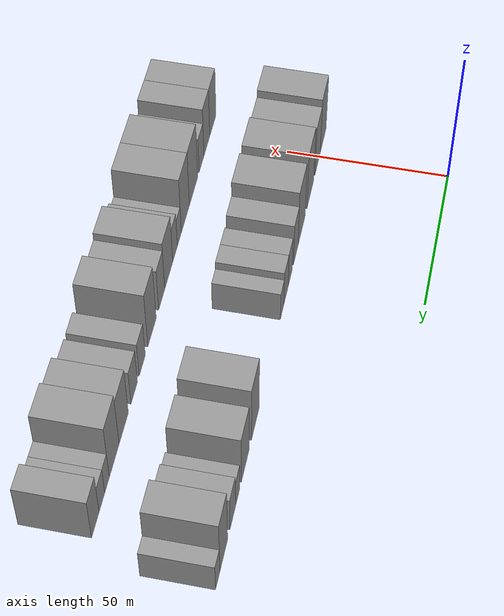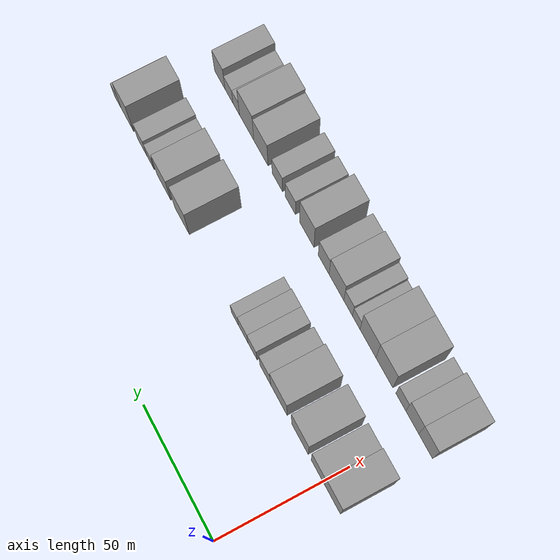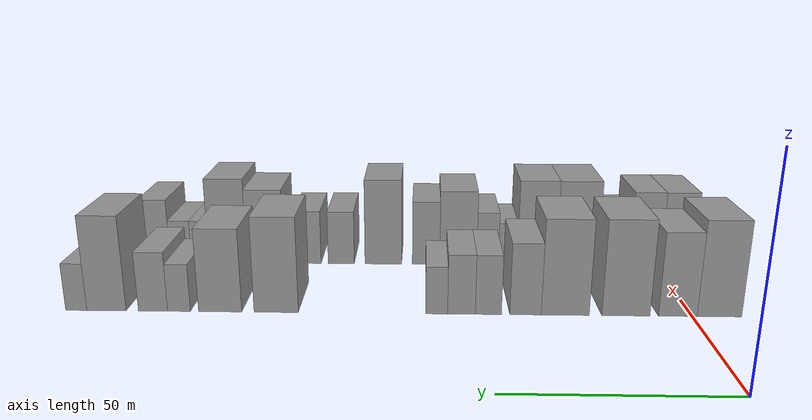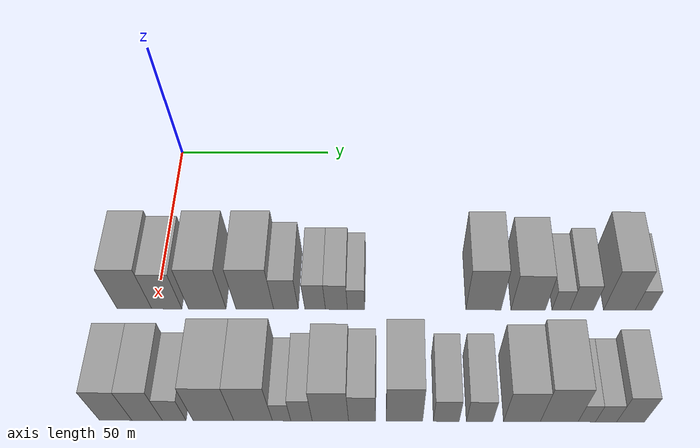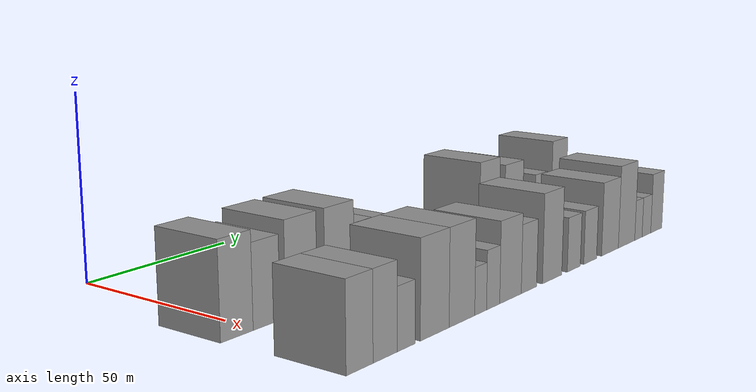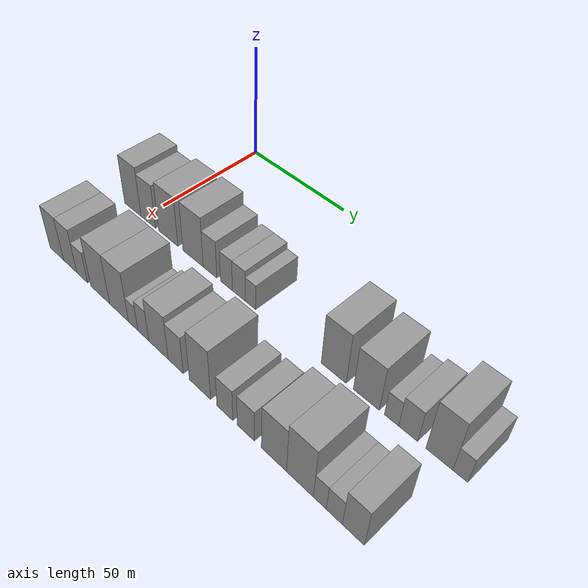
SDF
<sdf version="1.6">
 <world name="default">
  <model name="building_31">
   <static>1</static>
   <pose>50.0000 -6.4729 0 0.000000 0.000000 0.000000</pose>
   <link name="link">
    <pose>0 0 12.00 0 0 0</pose>
    <collision name="collision"><geometry><box><size>20.0000 10.5618 24.0000</size></box></geometry></collision>
    <visual name="visual">
     <cast_shadows>0</cast_shadows>
     <geometry><box><size>20.0000 10.5618 24.0000</size></box></geometry>
     <material>
      <script>
       <uri>model://grey_wall/materials/scripts</uri>
       <uri>model://grey_wall/materials/textures</uri>
       <name>vrc/grey_wall</name>
      </script>
     </material>
    </visual>
   </link>
  </model>
  <model name="building_32">
   <static>1</static>
   <pose>50.0000 3.3889 0 0.000000 0.000000 0.000000</pose>
   <link name="link">
    <pose>0 0 10.50 0 0 0</pose>
    <collision name="collision"><geometry><box><size>20.0000 9.1619 21.0000</size></box></geometry></collision>
    <visual name="visual">
     <cast_shadows>0</cast_shadows>
     <geometry><box><size>20.0000 9.1619 21.0000</size></box></geometry>
     <material>
      <script>
       <uri>model://grey_wall/materials/scripts</uri>
       <uri>model://grey_wall/materials/textures</uri>
       <name>vrc/grey_wall</name>
      </script>
     </material>
    </visual>
   </link>
  </model>
  <model name="building_33">
   <static>1</static>
   <pose>50.0000 15.7041 0 0.000000 0.000000 0.000000</pose>
   <link name="link">
    <pose>0 0 12.00 0 0 0</pose>
    <collision name="collision"><geometry><box><size>20.0000 11.4685 24.0000</size></box></geometry></collision>
    <visual name="visual">
     <cast_shadows>0</cast_shadows>
     <geometry><box><size>20.0000 11.4685 24.0000</size></box></geometry>
     <material>
      <script>
       <uri>model://grey_wall/materials/scripts</uri>
       <uri>model://grey_wall/materials/textures</uri>
       <name>vrc/grey_wall</name>
      </script>
     </material>
    </visual>
   </link>
  </model>
  <model name="building_34">
   <static>1</static>
   <pose>50.0000 30.1727 0 0.000000 0.000000 0.000000</pose>
   <link name="link">
    <pose>0 0 12.00 0 0 0</pose>
    <collision name="collision"><geometry><box><size>20.0000 11.4687 24.0000</size></box></geometry></collision>
    <visual name="visual">
     <cast_shadows>0</cast_shadows>
     <geometry><box><size>20.0000 11.4687 24.0000</size></box></geometry>
     <material>
      <script>
       <uri>model://grey_wall/materials/scripts</uri>
       <uri>model://grey_wall/materials/textures</uri>
       <name>vrc/grey_wall</name>
      </script>
     </material>
    </visual>
   </link>
  </model>
  <model name="building_35">
   <static>1</static>
   <pose>50.0000 39.6602 0 0.000000 0.000000 0.000000</pose>
   <link name="link">
    <pose>0 0 9.00 0 0 0</pose>
    <collision name="collision"><geometry><box><size>20.0000 7.5063 18.0000</size></box></geometry></collision>
    <visual name="visual">
     <cast_shadows>0</cast_shadows>
     <geometry><box><size>20.0000 7.5063 18.0000</size></box></geometry>
     <material>
      <script>
       <uri>model://grey_wall/materials/scripts</uri>
       <uri>model://grey_wall/materials/textures</uri>
       <name>vrc/grey_wall</name>
      </script>
     </material>
    </visual>
   </link>
  </model>
  <model name="building_36">
   <static>1</static>
   <pose>50.0000 48.5422 0 0.000000 0.000000 0.000000</pose>
   <link name="link">
    <pose>0 0 7.50 0 0 0</pose>
    <collision name="collision"><geometry><box><size>20.0000 6.2576 15.0000</size></box></geometry></collision>
    <visual name="visual">
     <cast_shadows>0</cast_shadows>
     <geometry><box><size>20.0000 6.2576 15.0000</size></box></geometry>
     <material>
      <script>
       <uri>model://grey_wall/materials/scripts</uri>
       <uri>model://grey_wall/materials/textures</uri>
       <name>vrc/grey_wall</name>
      </script>
     </material>
    </visual>
   </link>
  </model>
  <model name="building_37">
   <static>1</static>
   <pose>50.0000 55.0027 0 0.000000 0.000000 0.000000</pose>
   <link name="link">
    <pose>0 0 7.50 0 0 0</pose>
    <collision name="collision"><geometry><box><size>20.0000 6.6635 15.0000</size></box></geometry></collision>
    <visual name="visual">
     <cast_shadows>0</cast_shadows>
     <geometry><box><size>20.0000 6.6635 15.0000</size></box></geometry>
     <material>
      <script>
       <uri>model://grey_wall/materials/scripts</uri>
       <uri>model://grey_wall/materials/textures</uri>
       <name>vrc/grey_wall</name>
      </script>
     </material>
    </visual>
   </link>
  </model>
  <model name="building_38">
   <static>1</static>
   <pose>50.0000 60.9826 0 0.000000 0.000000 0.000000</pose>
   <link name="link">
    <pose>0 0 6.00 0 0 0</pose>
    <collision name="collision"><geometry><box><size>20.0000 5.2962 12.0000</size></box></geometry></collision>
    <visual name="visual">
     <cast_shadows>0</cast_shadows>
     <geometry><box><size>20.0000 5.2962 12.0000</size></box></geometry>
     <material>
      <script>
       <uri>model://grey_wall/materials/scripts</uri>
       <uri>model://grey_wall/materials/textures</uri>
       <name>vrc/grey_wall</name>
      </script>
     </material>
    </visual>
   </link>
  </model>
  <model name="building_39">
   <static>1</static>
   <pose>50.0000 99.6997 0 0.000000 0.000000 0.000000</pose>
   <link name="link">
    <pose>0 0 12.00 0 0 0</pose>
    <collision name="collision"><geometry><box><size>20.0000 10.7127 24.0000</size></box></geometry></collision>
    <visual name="visual">
     <cast_shadows>0</cast_shadows>
     <geometry><box><size>20.0000 10.7127 24.0000</size></box></geometry>
     <material>
      <script>
       <uri>model://grey_wall/materials/scripts</uri>
       <uri>model://grey_wall/materials/textures</uri>
       <name>vrc/grey_wall</name>
      </script>
     </material>
    </visual>
   </link>
  </model>
  <model name="building_40">
   <static>1</static>
   <pose>50.0000 113.2985 0 0.000000 0.000000 0.000000</pose>
   <link name="link">
    <pose>0 0 10.50 0 0 0</pose>
    <collision name="collision"><geometry><box><size>20.0000 10.4848 21.0000</size></box></geometry></collision>
    <visual name="visual">
     <cast_shadows>0</cast_shadows>
     <geometry><box><size>20.0000 10.4848 21.0000</size></box></geometry>
     <material>
      <script>
       <uri>model://grey_wall/materials/scripts</uri>
       <uri>model://grey_wall/materials/textures</uri>
       <name>vrc/grey_wall</name>
      </script>
     </material>
    </visual>
   </link>
  </model>
  <model name="building_41">
   <static>1</static>
   <pose>50.0000 123.3057 0 0.000000 0.000000 0.000000</pose>
   <link name="link">
    <pose>0 0 6.00 0 0 0</pose>
    <collision name="collision"><geometry><box><size>20.0000 5.5295 12.0000</size></box></geometry></collision>
    <visual name="visual">
     <cast_shadows>0</cast_shadows>
     <geometry><box><size>20.0000 5.5295 12.0000</size></box></geometry>
     <material>
      <script>
       <uri>model://grey_wall/materials/scripts</uri>
       <uri>model://grey_wall/materials/textures</uri>
       <name>vrc/grey_wall</name>
      </script>
     </material>
    </visual>
   </link>
  </model>
  <model name="building_42">
   <static>1</static>
   <pose>50.0000 129.6413 0 0.000000 0.000000 0.000000</pose>
   <link name="link">
    <pose>0 0 7.50 0 0 0</pose>
    <collision name="collision"><geometry><box><size>20.0000 7.1417 15.0000</size></box></geometry></collision>
    <visual name="visual">
     <cast_shadows>0</cast_shadows>
     <geometry><box><size>20.0000 7.1417 15.0000</size></box></geometry>
     <material>
      <script>
       <uri>model://grey_wall/materials/scripts</uri>
       <uri>model://grey_wall/materials/textures</uri>
       <name>vrc/grey_wall</name>
      </script>
     </material>
    </visual>
   </link>
  </model>
  <model name="building_43">
   <static>1</static>
   <pose>50.0000 141.0162 0 0.000000 0.000000 0.000000</pose>
   <link name="link">
    <pose>0 0 12.00 0 0 0</pose>
    <collision name="collision"><geometry><box><size>20.0000 9.6081 24.0000</size></box></geometry></collision>
    <visual name="visual">
     <cast_shadows>0</cast_shadows>
     <geometry><box><size>20.0000 9.6081 24.0000</size></box></geometry>
     <material>
      <script>
       <uri>model://grey_wall/materials/scripts</uri>
       <uri>model://grey_wall/materials/textures</uri>
       <name>vrc/grey_wall</name>
      </script>
     </material>
    </visual>
   </link>
  </model>
  <model name="building_44">
   <static>1</static>
   <pose>50.0000 148.4141 0 0.000000 0.000000 0.000000</pose>
   <link name="link">
    <pose>0 0 6.00 0 0 0</pose>
    <collision name="collision"><geometry><box><size>20.0000 5.1876 12.0000</size></box></geometry></collision>
    <visual name="visual">
     <cast_shadows>0</cast_shadows>
     <geometry><box><size>20.0000 5.1876 12.0000</size></box></geometry>
     <material>
      <script>
       <uri>model://grey_wall/materials/scripts</uri>
       <uri>model://grey_wall/materials/textures</uri>
       <name>vrc/grey_wall</name>
      </script>
     </material>
    </visual>
   </link>
  </model>
  <model name="building_92">
   <static>1</static>
   <pose>85.0000 -5.9028 0 0.000000 0.000000 0.000000</pose>
   <link name="link">
    <pose>0 0 10.50 0 0 0</pose>
    <collision name="collision"><geometry><box><size>20.0000 9.1140 21.0000</size></box></geometry></collision>
    <visual name="visual">
     <cast_shadows>0</cast_shadows>
     <geometry><box><size>20.0000 9.1140 21.0000</size></box></geometry>
     <material>
      <script>
       <uri>model://grey_wall/materials/scripts</uri>
       <uri>model://grey_wall/materials/textures</uri>
       <name>vrc/grey_wall</name>
      </script>
     </material>
    </visual>
   </link>
  </model>
  <model name="building_93">
   <static>1</static>
   <pose>85.0000 2.9292 0 0.000000 0.000000 0.000000</pose>
   <link name="link">
    <pose>0 0 10.50 0 0 0</pose>
    <collision name="collision"><geometry><box><size>20.0000 8.5500 21.0000</size></box></geometry></collision>
    <visual name="visual">
     <cast_shadows>0</cast_shadows>
     <geometry><box><size>20.0000 8.5500 21.0000</size></box></geometry>
     <material>
      <script>
       <uri>model://grey_wall/materials/scripts</uri>
       <uri>model://grey_wall/materials/textures</uri>
       <name>vrc/grey_wall</name>
      </script>
     </material>
    </visual>
   </link>
  </model>
  <model name="building_94">
   <static>1</static>
   <pose>85.0000 10.5627 0 0.000000 0.000000 0.000000</pose>
   <link name="link">
    <pose>0 0 7.50 0 0 0</pose>
    <collision name="collision"><geometry><box><size>20.0000 6.7169 15.0000</size></box></geometry></collision>
    <visual name="visual">
     <cast_shadows>0</cast_shadows>
     <geometry><box><size>20.0000 6.7169 15.0000</size></box></geometry>
     <material>
      <script>
       <uri>model://grey_wall/materials/scripts</uri>
       <uri>model://grey_wall/materials/textures</uri>
       <name>vrc/grey_wall</name>
      </script>
     </material>
    </visual>
   </link>
  </model>
  <model name="building_95">
   <static>1</static>
   <pose>85.0000 21.6450 0 0.000000 0.000000 0.000000</pose>
   <link name="link">
    <pose>0 0 12.00 0 0 0</pose>
    <collision name="collision"><geometry><box><size>20.0000 11.4477 24.0000</size></box></geometry></collision>
    <visual name="visual">
     <cast_shadows>0</cast_shadows>
     <geometry><box><size>20.0000 11.4477 24.0000</size></box></geometry>
     <material>
      <script>
       <uri>model://grey_wall/materials/scripts</uri>
       <uri>model://grey_wall/materials/textures</uri>
       <name>vrc/grey_wall</name>
      </script>
     </material>
    </visual>
   </link>
  </model>
  <model name="building_96">
   <static>1</static>
   <pose>85.0000 32.7857 0 0.000000 0.000000 0.000000</pose>
   <link name="link">
    <pose>0 0 12.00 0 0 0</pose>
    <collision name="collision"><geometry><box><size>20.0000 10.8338 24.0000</size></box></geometry></collision>
    <visual name="visual">
     <cast_shadows>0</cast_shadows>
     <geometry><box><size>20.0000 10.8338 24.0000</size></box></geometry>
     <material>
      <script>
       <uri>model://grey_wall/materials/scripts</uri>
       <uri>model://grey_wall/materials/textures</uri>
       <name>vrc/grey_wall</name>
      </script>
     </material>
    </visual>
   </link>
  </model>
  <model name="building_97">
   <static>1</static>
   <pose>85.0000 40.8037 0 0.000000 0.000000 0.000000</pose>
   <link name="link">
    <pose>0 0 6.00 0 0 0</pose>
    <collision name="collision"><geometry><box><size>20.0000 5.2021 12.0000</size></box></geometry></collision>
    <visual name="visual">
     <cast_shadows>0</cast_shadows>
     <geometry><box><size>20.0000 5.2021 12.0000</size></box></geometry>
     <material>
      <script>
       <uri>model://grey_wall/materials/scripts</uri>
       <uri>model://grey_wall/materials/textures</uri>
       <name>vrc/grey_wall</name>
      </script>
     </material>
    </visual>
   </link>
  </model>
  <model name="building_98">
   <static>1</static>
   <pose>85.0000 46.4059 0 0.000000 0.000000 0.000000</pose>
   <link name="link">
    <pose>0 0 7.50 0 0 0</pose>
    <collision name="collision"><geometry><box><size>20.0000 6.0024 15.0000</size></box></geometry></collision>
    <visual name="visual">
     <cast_shadows>0</cast_shadows>
     <geometry><box><size>20.0000 6.0024 15.0000</size></box></geometry>
     <material>
      <script>
       <uri>model://grey_wall/materials/scripts</uri>
       <uri>model://grey_wall/materials/textures</uri>
       <name>vrc/grey_wall</name>
      </script>
     </material>
    </visual>
   </link>
  </model>
  <model name="building_99">
   <static>1</static>
   <pose>85.0000 54.5249 0 0.000000 0.000000 0.000000</pose>
   <link name="link">
    <pose>0 0 10.50 0 0 0</pose>
    <collision name="collision"><geometry><box><size>20.0000 10.2356 21.0000</size></box></geometry></collision>
    <visual name="visual">
     <cast_shadows>0</cast_shadows>
     <geometry><box><size>20.0000 10.2356 21.0000</size></box></geometry>
     <material>
      <script>
       <uri>model://grey_wall/materials/scripts</uri>
       <uri>model://grey_wall/materials/textures</uri>
       <name>vrc/grey_wall</name>
      </script>
     </material>
    </visual>
   </link>
  </model>
  <model name="building_100">
   <static>1</static>
   <pose>85.0000 63.4577 0 0.000000 0.000000 0.000000</pose>
   <link name="link">
    <pose>0 0 9.00 0 0 0</pose>
    <collision name="collision"><geometry><box><size>20.0000 7.6299 18.0000</size></box></geometry></collision>
    <visual name="visual">
     <cast_shadows>0</cast_shadows>
     <geometry><box><size>20.0000 7.6299 18.0000</size></box></geometry>
     <material>
      <script>
       <uri>model://grey_wall/materials/scripts</uri>
       <uri>model://grey_wall/materials/textures</uri>
       <name>vrc/grey_wall</name>
      </script>
     </material>
    </visual>
   </link>
  </model>
  <model name="building_101">
   <static>1</static>
   <pose>85.0000 75.3697 0 0.000000 0.000000 0.000000</pose>
   <link name="link">
    <pose>0 0 12.00 0 0 0</pose>
    <collision name="collision"><geometry><box><size>20.0000 10.1941 24.0000</size></box></geometry></collision>
    <visual name="visual">
     <cast_shadows>0</cast_shadows>
     <geometry><box><size>20.0000 10.1941 24.0000</size></box></geometry>
     <material>
      <script>
       <uri>model://grey_wall/materials/scripts</uri>
       <uri>model://grey_wall/materials/textures</uri>
       <name>vrc/grey_wall</name>
      </script>
     </material>
    </visual>
   </link>
  </model>
  <model name="building_102">
   <static>1</static>
   <pose>85.0000 87.1028 0 0.000000 0.000000 0.000000</pose>
   <link name="link">
    <pose>0 0 7.50 0 0 0</pose>
    <collision name="collision"><geometry><box><size>20.0000 7.2722 15.0000</size></box></geometry></collision>
    <visual name="visual">
     <cast_shadows>0</cast_shadows>
     <geometry><box><size>20.0000 7.2722 15.0000</size></box></geometry>
     <material>
      <script>
       <uri>model://grey_wall/materials/scripts</uri>
       <uri>model://grey_wall/materials/textures</uri>
       <name>vrc/grey_wall</name>
      </script>
     </material>
    </visual>
   </link>
  </model>
  <model name="building_103">
   <static>1</static>
   <pose>85.0000 96.4759 0 0.000000 0.000000 0.000000</pose>
   <link name="link">
    <pose>0 0 7.50 0 0 0</pose>
    <collision name="collision"><geometry><box><size>20.0000 7.4739 15.0000</size></box></geometry></collision>
    <visual name="visual">
     <cast_shadows>0</cast_shadows>
     <geometry><box><size>20.0000 7.4739 15.0000</size></box></geometry>
     <material>
      <script>
       <uri>model://grey_wall/materials/scripts</uri>
       <uri>model://grey_wall/materials/textures</uri>
       <name>vrc/grey_wall</name>
      </script>
     </material>
    </visual>
   </link>
  </model>
  <model name="building_104">
   <static>1</static>
   <pose>85.0000 108.3923 0 0.000000 0.000000 0.000000</pose>
   <link name="link">
    <pose>0 0 10.50 0 0 0</pose>
    <collision name="collision"><geometry><box><size>20.0000 10.3588 21.0000</size></box></geometry></collision>
    <visual name="visual">
     <cast_shadows>0</cast_shadows>
     <geometry><box><size>20.0000 10.3588 21.0000</size></box></geometry>
     <material>
      <script>
       <uri>model://grey_wall/materials/scripts</uri>
       <uri>model://grey_wall/materials/textures</uri>
       <name>vrc/grey_wall</name>
      </script>
     </material>
    </visual>
   </link>
  </model>
  <model name="building_105">
   <static>1</static>
   <pose>85.0000 118.8786 0 0.000000 0.000000 0.000000</pose>
   <link name="link">
    <pose>0 0 12.00 0 0 0</pose>
    <collision name="collision"><geometry><box><size>20.0000 10.6140 24.0000</size></box></geometry></collision>
    <visual name="visual">
     <cast_shadows>0</cast_shadows>
     <geometry><box><size>20.0000 10.6140 24.0000</size></box></geometry>
     <material>
      <script>
       <uri>model://grey_wall/materials/scripts</uri>
       <uri>model://grey_wall/materials/textures</uri>
       <name>vrc/grey_wall</name>
      </script>
     </material>
    </visual>
   </link>
  </model>
  <model name="building_106">
   <static>1</static>
   <pose>85.0000 126.6306 0 0.000000 0.000000 0.000000</pose>
   <link name="link">
    <pose>0 0 6.00 0 0 0</pose>
    <collision name="collision"><geometry><box><size>20.0000 4.8900 12.0000</size></box></geometry></collision>
    <visual name="visual">
     <cast_shadows>0</cast_shadows>
     <geometry><box><size>20.0000 4.8900 12.0000</size></box></geometry>
     <material>
      <script>
       <uri>model://grey_wall/materials/scripts</uri>
       <uri>model://grey_wall/materials/textures</uri>
       <name>vrc/grey_wall</name>
      </script>
     </material>
    </visual>
   </link>
  </model>
  <model name="building_107">
   <static>1</static>
   <pose>85.0000 132.0474 0 0.000000 0.000000 0.000000</pose>
   <link name="link">
    <pose>0 0 6.00 0 0 0</pose>
    <collision name="collision"><geometry><box><size>20.0000 5.9436 12.0000</size></box></geometry></collision>
    <visual name="visual">
     <cast_shadows>0</cast_shadows>
     <geometry><box><size>20.0000 5.9436 12.0000</size></box></geometry>
     <material>
      <script>
       <uri>model://grey_wall/materials/scripts</uri>
       <uri>model://grey_wall/materials/textures</uri>
       <name>vrc/grey_wall</name>
      </script>
     </material>
    </visual>
   </link>
  </model>
  <model name="building_108">
   <static>1</static>
   <pose>85.0000 138.9345 0 0.000000 0.000000 0.000000</pose>
   <link name="link">
    <pose>0 0 9.00 0 0 0</pose>
    <collision name="collision"><geometry><box><size>20.0000 7.8307 18.0000</size></box></geometry></collision>
    <visual name="visual">
     <cast_shadows>0</cast_shadows>
     <geometry><box><size>20.0000 7.8307 18.0000</size></box></geometry>
     <material>
      <script>
       <uri>model://grey_wall/materials/scripts</uri>
       <uri>model://grey_wall/materials/textures</uri>
       <name>vrc/grey_wall</name>
      </script>
     </material>
    </visual>
   </link>
  </model>
 </world>
</sdf>
